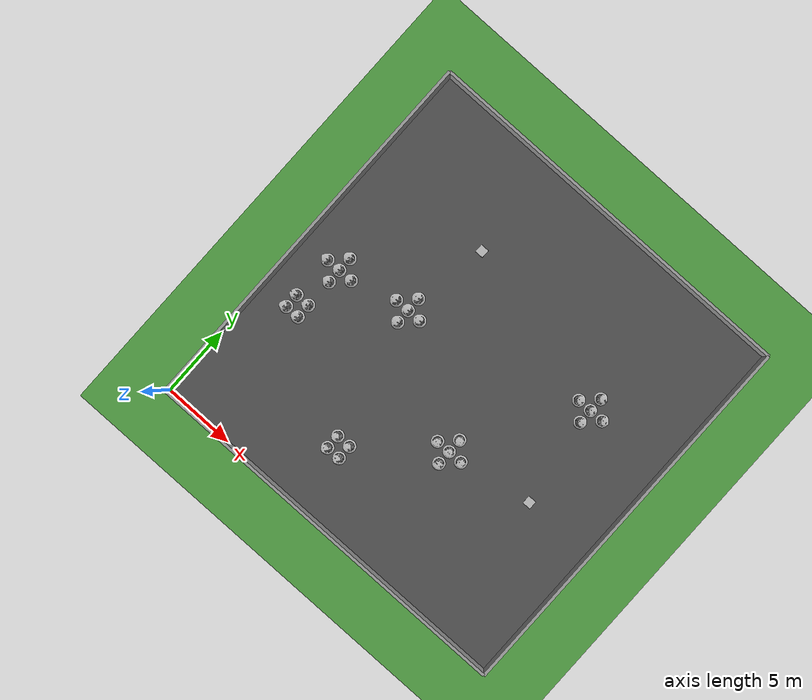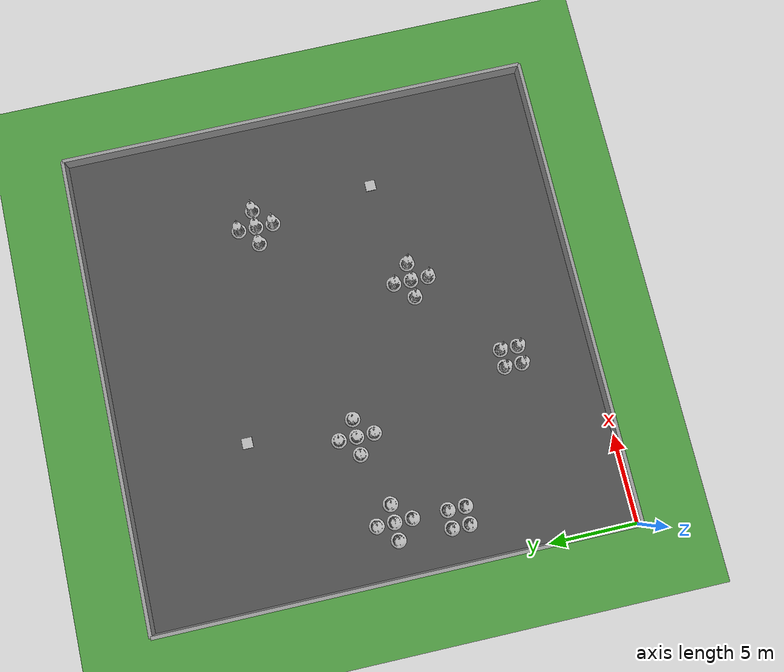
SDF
<sdf version="1.4">
 <world name="default">
  <model name="vrc_driving_terrain">
   <static>1</static>
   <link name="grass_plane">
    <visual name="visual_0">
     <cast_shadows>0</cast_shadows>
     <geometry><plane><normal>0 0 1</normal><size>150 150</size></plane></geometry>
     <material>
      <script>
       <uri>model://vrc_driving_terrain/materials/scripts</uri>
       <uri>model://vrc_driving_terrain/materials/textures</uri>
       <name>vrc/grass</name>
      </script>
     </material>
    </visual>
   </link>
   <pose>0 0 0.01 0 -0 0</pose>
  </model>
  <include><uri>model://ground_plane</uri></include>
  <include><uri>model://sun</uri></include>
  <model name="box_target_green">
   <static>1</static>
   <link name="link">
    <pose>9 20 0 0 0 0</pose>
    <collision name="collision"><geometry><box><size>6 6 2</size></box></geometry></collision>
    <visual name="visual">
     <geometry>
      <mesh><uri>model://box_target_green/meshes/mesh.dae</uri><scale>0.1 0.1 0.1</scale></mesh>
     </geometry>
    </visual>
   </link>
  </model>
  <model name="box_target_red">
   <static>1</static>
   <link name="link">
    <pose>22 10 0 0 0 0</pose>
    <collision name="collision"><geometry><box><size>6 6 2</size></box></geometry></collision>
    <visual name="visual">
     <geometry><mesh><uri>model://box_target_red/meshes/mesh.dae</uri><scale>0.1 0.1 0.1</scale></mesh></geometry>
    </visual>
   </link>
  </model>
  <model name="grey_wall">
   <static>1</static>
   <link name="link">
    <visual name="visual">
     <cast_shadows>0</cast_shadows>
     <geometry><box><size>27 0.2 2</size></box></geometry>
     <material>
      <script>
       <uri>model://grey_wall/materials/scripts</uri>
       <uri>model://grey_wall/materials/textures</uri>
       <name>vrc/grey_wall</name>
      </script>
     </material>
    </visual>
   </link>
   <pose>13.5 0 0 0 0 0</pose>
  </model>
  <model name="grey_wall">
   <static>1</static>
   <link name="link">
    <visual name="visual">
     <cast_shadows>0</cast_shadows>
     <geometry><box><size>27 0.2 2</size></box></geometry>
     <material>
      <script>
       <uri>model://grey_wall/materials/scripts</uri>
       <uri>model://grey_wall/materials/textures</uri>
       <name>vrc/grey_wall</name>
      </script>
     </material>
    </visual>
   </link>
   <pose>0 13.5 0 0 0 1.57079632679</pose>
  </model>
  <model name="grey_wall">
   <static>1</static>
   <link name="link">
    <visual name="visual">
     <cast_shadows>0</cast_shadows>
     <geometry><box><size>27 0.2 2</size></box></geometry>
     <material>
      <script>
       <uri>model://grey_wall/materials/scripts</uri>
       <uri>model://grey_wall/materials/textures</uri>
       <name>vrc/grey_wall</name>
      </script>
     </material>
    </visual>
   </link>
   <pose>27 13.5 0 0 0 -1.57079632679</pose>
  </model>
  <model name="grey_wall">
   <static>1</static>
   <link name="link">
    <visual name="visual">
     <cast_shadows>0</cast_shadows>
     <geometry><box><size>27 0.2 2</size></box></geometry>
     <material>
      <script>
       <uri>model://grey_wall/materials/scripts</uri>
       <uri>model://grey_wall/materials/textures</uri>
       <name>vrc/grey_wall</name>
      </script>
     </material>
    </visual>
   </link>
   <pose>13.5 27 0 0 0 3.14159265359</pose>
  </model>
  <model name="asphalt_plane">
   <static>1</static>
   <link name="link">
    <visual name="visual">
     <cast_shadows>0</cast_shadows>
     <geometry><box><size>27 27 0.1</size></box></geometry>
     <material>
      <script>
       <uri>model://asphalt_plane/materials/scripts</uri>
       <uri>model://asphalt_plane/materials/textures</uri>
       <name>vrc/asphalt</name>
      </script>
     </material>
    </visual>
   </link>
   <pose>13.5 13.5 0 0 0 0</pose>
  </model>
  <model name="Construction Barrel">
   <link name="link">
    <collision name="collision">
     <geometry>
      <mesh><uri>model://construction_barrel/meshes/construction_barrel.dae</uri><scale>1 1 1</scale></mesh>
     </geometry>
    </collision>
    <visual name="visual">
     <geometry><mesh><uri>model://construction_barrel/meshes/construction_barrel.dae</uri></mesh></geometry>
    </visual>
   </link>
   <pose>2 9 0 0 0 0</pose>
   <static>1</static>
  </model>
  <model name="Construction Barrel">
   <link name="link">
    <collision name="collision">
     <geometry>
      <mesh><uri>model://construction_barrel/meshes/construction_barrel.dae</uri><scale>1 1 1</scale></mesh>
     </geometry>
    </collision>
    <visual name="visual">
     <geometry><mesh><uri>model://construction_barrel/meshes/construction_barrel.dae</uri></mesh></geometry>
    </visual>
   </link>
   <pose>2 10 0 0 0 0</pose>
   <static>1</static>
  </model>
  <model name="Construction Barrel">
   <link name="link">
    <collision name="collision">
     <geometry>
      <mesh><uri>model://construction_barrel/meshes/construction_barrel.dae</uri><scale>1 1 1</scale></mesh>
     </geometry>
    </collision>
    <visual name="visual">
     <geometry><mesh><uri>model://construction_barrel/meshes/construction_barrel.dae</uri></mesh></geometry>
    </visual>
   </link>
   <pose>2 13 0 0 0 0</pose>
   <static>1</static>
  </model>
  <model name="Construction Barrel">
   <link name="link">
    <collision name="collision">
     <geometry>
      <mesh><uri>model://construction_barrel/meshes/construction_barrel.dae</uri><scale>1 1 1</scale></mesh>
     </geometry>
    </collision>
    <visual name="visual">
     <geometry><mesh><uri>model://construction_barrel/meshes/construction_barrel.dae</uri></mesh></geometry>
    </visual>
   </link>
   <pose>3 9 0 0 0 0</pose>
   <static>1</static>
  </model>
  <model name="Construction Barrel">
   <link name="link">
    <collision name="collision">
     <geometry>
      <mesh><uri>model://construction_barrel/meshes/construction_barrel.dae</uri><scale>1 1 1</scale></mesh>
     </geometry>
    </collision>
    <visual name="visual">
     <geometry><mesh><uri>model://construction_barrel/meshes/construction_barrel.dae</uri></mesh></geometry>
    </visual>
   </link>
   <pose>3 10 0 0 0 0</pose>
   <static>1</static>
  </model>
  <model name="Construction Barrel">
   <link name="link">
    <collision name="collision">
     <geometry>
      <mesh><uri>model://construction_barrel/meshes/construction_barrel.dae</uri><scale>1 1 1</scale></mesh>
     </geometry>
    </collision>
    <visual name="visual">
     <geometry><mesh><uri>model://construction_barrel/meshes/construction_barrel.dae</uri></mesh></geometry>
    </visual>
   </link>
   <pose>3 12 0 0 0 0</pose>
   <static>1</static>
  </model>
  <model name="Construction Barrel">
   <link name="link">
    <collision name="collision">
     <geometry>
      <mesh><uri>model://construction_barrel/meshes/construction_barrel.dae</uri><scale>1 1 1</scale></mesh>
     </geometry>
    </collision>
    <visual name="visual">
     <geometry><mesh><uri>model://construction_barrel/meshes/construction_barrel.dae</uri></mesh></geometry>
    </visual>
   </link>
   <pose>3 13 0 0 0 0</pose>
   <static>1</static>
  </model>
  <model name="Construction Barrel">
   <link name="link">
    <collision name="collision">
     <geometry>
      <mesh><uri>model://construction_barrel/meshes/construction_barrel.dae</uri><scale>1 1 1</scale></mesh>
     </geometry>
    </collision>
    <visual name="visual">
     <geometry><mesh><uri>model://construction_barrel/meshes/construction_barrel.dae</uri></mesh></geometry>
    </visual>
   </link>
   <pose>3 14 0 0 0 0</pose>
   <static>1</static>
  </model>
  <model name="Construction Barrel">
   <link name="link">
    <collision name="collision">
     <geometry>
      <mesh><uri>model://construction_barrel/meshes/construction_barrel.dae</uri><scale>1 1 1</scale></mesh>
     </geometry>
    </collision>
    <visual name="visual">
     <geometry><mesh><uri>model://construction_barrel/meshes/construction_barrel.dae</uri></mesh></geometry>
    </visual>
   </link>
   <pose>4 13 0 0 0 0</pose>
   <static>1</static>
  </model>
  <model name="Construction Barrel">
   <link name="link">
    <collision name="collision">
     <geometry>
      <mesh><uri>model://construction_barrel/meshes/construction_barrel.dae</uri><scale>1 1 1</scale></mesh>
     </geometry>
    </collision>
    <visual name="visual">
     <geometry><mesh><uri>model://construction_barrel/meshes/construction_barrel.dae</uri></mesh></geometry>
    </visual>
   </link>
   <pose>7 14 0 0 0 0</pose>
   <static>1</static>
  </model>
  <model name="Construction Barrel">
   <link name="link">
    <collision name="collision">
     <geometry>
      <mesh><uri>model://construction_barrel/meshes/construction_barrel.dae</uri><scale>1 1 1</scale></mesh>
     </geometry>
    </collision>
    <visual name="visual">
     <geometry><mesh><uri>model://construction_barrel/meshes/construction_barrel.dae</uri></mesh></geometry>
    </visual>
   </link>
   <pose>8 13 0 0 0 0</pose>
   <static>1</static>
  </model>
  <model name="Construction Barrel">
   <link name="link">
    <collision name="collision">
     <geometry>
      <mesh><uri>model://construction_barrel/meshes/construction_barrel.dae</uri><scale>1 1 1</scale></mesh>
     </geometry>
    </collision>
    <visual name="visual">
     <geometry><mesh><uri>model://construction_barrel/meshes/construction_barrel.dae</uri></mesh></geometry>
    </visual>
   </link>
   <pose>8 14 0 0 0 0</pose>
   <static>1</static>
  </model>
  <model name="Construction Barrel">
   <link name="link">
    <collision name="collision">
     <geometry>
      <mesh><uri>model://construction_barrel/meshes/construction_barrel.dae</uri><scale>1 1 1</scale></mesh>
     </geometry>
    </collision>
    <visual name="visual">
     <geometry><mesh><uri>model://construction_barrel/meshes/construction_barrel.dae</uri></mesh></geometry>
    </visual>
   </link>
   <pose>8 15 0 0 0 0</pose>
   <static>1</static>
  </model>
  <model name="Construction Barrel">
   <link name="link">
    <collision name="collision">
     <geometry>
      <mesh><uri>model://construction_barrel/meshes/construction_barrel.dae</uri><scale>1 1 1</scale></mesh>
     </geometry>
    </collision>
    <visual name="visual">
     <geometry><mesh><uri>model://construction_barrel/meshes/construction_barrel.dae</uri></mesh></geometry>
    </visual>
   </link>
   <pose>9 14 0 0 0 0</pose>
   <static>1</static>
  </model>
  <model name="Construction Barrel">
   <link name="link">
    <collision name="collision">
     <geometry>
      <mesh><uri>model://construction_barrel/meshes/construction_barrel.dae</uri><scale>1 1 1</scale></mesh>
     </geometry>
    </collision>
    <visual name="visual">
     <geometry><mesh><uri>model://construction_barrel/meshes/construction_barrel.dae</uri></mesh></geometry>
    </visual>
   </link>
   <pose>10 4 0 0 0 0</pose>
   <static>1</static>
  </model>
  <model name="Construction Barrel">
   <link name="link">
    <collision name="collision">
     <geometry>
      <mesh><uri>model://construction_barrel/meshes/construction_barrel.dae</uri><scale>1 1 1</scale></mesh>
     </geometry>
    </collision>
    <visual name="visual">
     <geometry><mesh><uri>model://construction_barrel/meshes/construction_barrel.dae</uri></mesh></geometry>
    </visual>
   </link>
   <pose>10 5 0 0 0 0</pose>
   <static>1</static>
  </model>
  <model name="Construction Barrel">
   <link name="link">
    <collision name="collision">
     <geometry>
      <mesh><uri>model://construction_barrel/meshes/construction_barrel.dae</uri><scale>1 1 1</scale></mesh>
     </geometry>
    </collision>
    <visual name="visual">
     <geometry><mesh><uri>model://construction_barrel/meshes/construction_barrel.dae</uri></mesh></geometry>
    </visual>
   </link>
   <pose>11 4 0 0 0 0</pose>
   <static>1</static>
  </model>
  <model name="Construction Barrel">
   <link name="link">
    <collision name="collision">
     <geometry>
      <mesh><uri>model://construction_barrel/meshes/construction_barrel.dae</uri><scale>1 1 1</scale></mesh>
     </geometry>
    </collision>
    <visual name="visual">
     <geometry><mesh><uri>model://construction_barrel/meshes/construction_barrel.dae</uri></mesh></geometry>
    </visual>
   </link>
   <pose>11 5 0 0 0 0</pose>
   <static>1</static>
  </model>
  <model name="Construction Barrel">
   <link name="link">
    <collision name="collision">
     <geometry>
      <mesh><uri>model://construction_barrel/meshes/construction_barrel.dae</uri><scale>1 1 1</scale></mesh>
     </geometry>
    </collision>
    <visual name="visual">
     <geometry><mesh><uri>model://construction_barrel/meshes/construction_barrel.dae</uri></mesh></geometry>
    </visual>
   </link>
   <pose>15 9 0 0 0 0</pose>
   <static>1</static>
  </model>
  <model name="Construction Barrel">
   <link name="link">
    <collision name="collision">
     <geometry>
      <mesh><uri>model://construction_barrel/meshes/construction_barrel.dae</uri><scale>1 1 1</scale></mesh>
     </geometry>
    </collision>
    <visual name="visual">
     <geometry><mesh><uri>model://construction_barrel/meshes/construction_barrel.dae</uri></mesh></geometry>
    </visual>
   </link>
   <pose>16 8 0 0 0 0</pose>
   <static>1</static>
  </model>
  <model name="Construction Barrel">
   <link name="link">
    <collision name="collision">
     <geometry>
      <mesh><uri>model://construction_barrel/meshes/construction_barrel.dae</uri><scale>1 1 1</scale></mesh>
     </geometry>
    </collision>
    <visual name="visual">
     <geometry><mesh><uri>model://construction_barrel/meshes/construction_barrel.dae</uri></mesh></geometry>
    </visual>
   </link>
   <pose>16 9 0 0 0 0</pose>
   <static>1</static>
  </model>
  <model name="Construction Barrel">
   <link name="link">
    <collision name="collision">
     <geometry>
      <mesh><uri>model://construction_barrel/meshes/construction_barrel.dae</uri><scale>1 1 1</scale></mesh>
     </geometry>
    </collision>
    <visual name="visual">
     <geometry><mesh><uri>model://construction_barrel/meshes/construction_barrel.dae</uri></mesh></geometry>
    </visual>
   </link>
   <pose>16 10 0 0 0 0</pose>
   <static>1</static>
  </model>
  <model name="Construction Barrel">
   <link name="link">
    <collision name="collision">
     <geometry>
      <mesh><uri>model://construction_barrel/meshes/construction_barrel.dae</uri><scale>1 1 1</scale></mesh>
     </geometry>
    </collision>
    <visual name="visual">
     <geometry><mesh><uri>model://construction_barrel/meshes/construction_barrel.dae</uri></mesh></geometry>
    </visual>
   </link>
   <pose>17 9 0 0 0 0</pose>
   <static>1</static>
  </model>
  <model name="Construction Barrel">
   <link name="link">
    <collision name="collision">
     <geometry>
      <mesh><uri>model://construction_barrel/meshes/construction_barrel.dae</uri><scale>1 1 1</scale></mesh>
     </geometry>
    </collision>
    <visual name="visual">
     <geometry><mesh><uri>model://construction_barrel/meshes/construction_barrel.dae</uri></mesh></geometry>
    </visual>
   </link>
   <pose>20 17 0 0 0 0</pose>
   <static>1</static>
  </model>
  <model name="Construction Barrel">
   <link name="link">
    <collision name="collision">
     <geometry>
      <mesh><uri>model://construction_barrel/meshes/construction_barrel.dae</uri><scale>1 1 1</scale></mesh>
     </geometry>
    </collision>
    <visual name="visual">
     <geometry><mesh><uri>model://construction_barrel/meshes/construction_barrel.dae</uri></mesh></geometry>
    </visual>
   </link>
   <pose>21 16 0 0 0 0</pose>
   <static>1</static>
  </model>
  <model name="Construction Barrel">
   <link name="link">
    <collision name="collision">
     <geometry>
      <mesh><uri>model://construction_barrel/meshes/construction_barrel.dae</uri><scale>1 1 1</scale></mesh>
     </geometry>
    </collision>
    <visual name="visual">
     <geometry><mesh><uri>model://construction_barrel/meshes/construction_barrel.dae</uri></mesh></geometry>
    </visual>
   </link>
   <pose>21 17 0 0 0 0</pose>
   <static>1</static>
  </model>
  <model name="Construction Barrel">
   <link name="link">
    <collision name="collision">
     <geometry>
      <mesh><uri>model://construction_barrel/meshes/construction_barrel.dae</uri><scale>1 1 1</scale></mesh>
     </geometry>
    </collision>
    <visual name="visual">
     <geometry><mesh><uri>model://construction_barrel/meshes/construction_barrel.dae</uri></mesh></geometry>
    </visual>
   </link>
   <pose>21 18 0 0 0 0</pose>
   <static>1</static>
  </model>
  <model name="Construction Barrel">
   <link name="link">
    <collision name="collision">
     <geometry>
      <mesh><uri>model://construction_barrel/meshes/construction_barrel.dae</uri><scale>1 1 1</scale></mesh>
     </geometry>
    </collision>
    <visual name="visual">
     <geometry><mesh><uri>model://construction_barrel/meshes/construction_barrel.dae</uri></mesh></geometry>
    </visual>
   </link>
   <pose>22 17 0 0 0 0</pose>
   <static>1</static>
  </model>
 </world>
</sdf>
